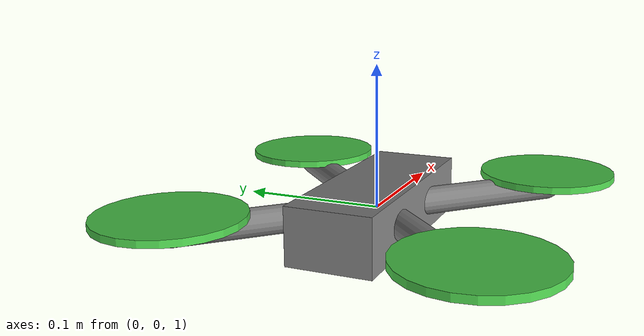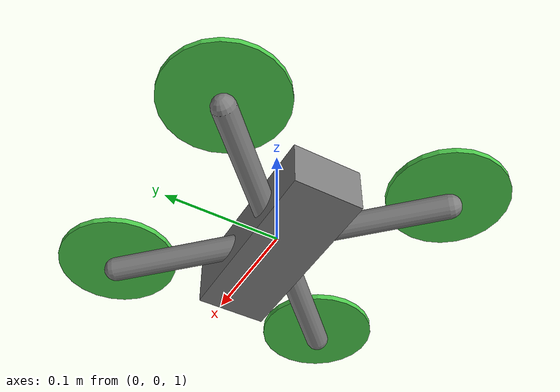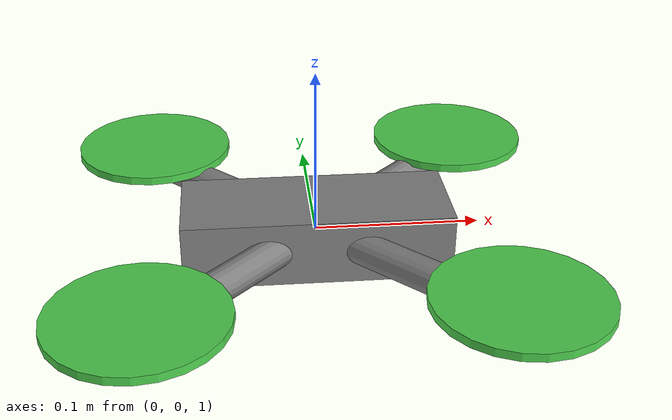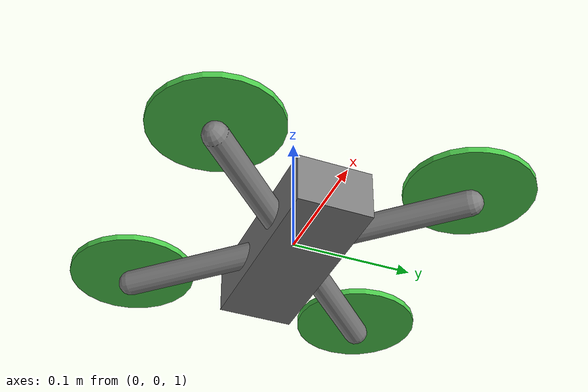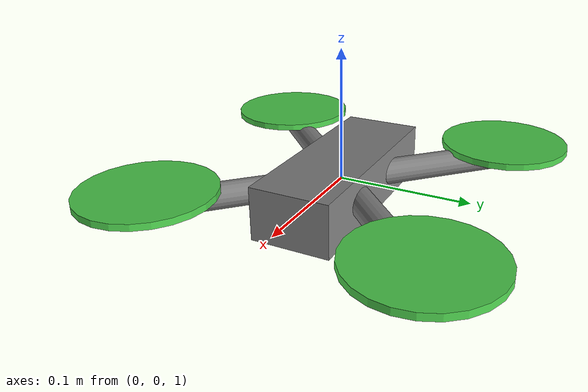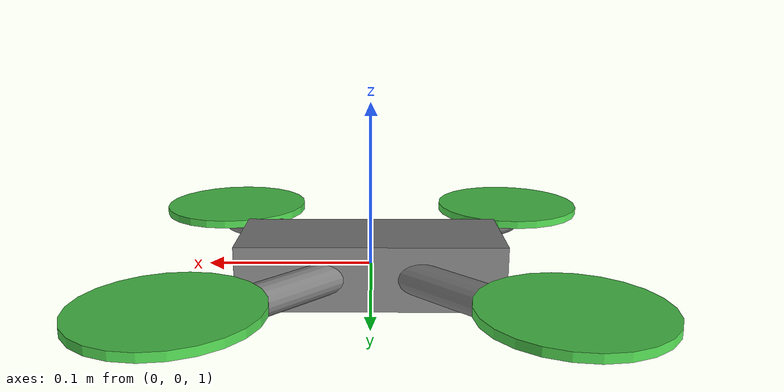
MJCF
<mujoco model="drone2">
	<compiler inertiafromgeom="true" coordinate="local"/>
	<option	timestep="0.002" gravity="0 0 -9.81" />

    <asset>
        <texture builtin="gradient" height="100" rgb1="1 1 1" rgb2="0 0 0" type="skybox" width="100"/>
        <texture builtin="flat" height="1278" mark="cross" markrgb="1 1 1" name="texgeom" random="0.01" rgb1="0.8 0.6 0.4" rgb2="0.8 0.6 0.4" type="cube" width="127"/>
        <texture builtin="checker" height="100" name="texplane" rgb1="0 0 0" rgb2="0.8 0.8 0.8" type="2d" width="100"/>
        <material name="MatPlane" reflectance="0.5" shininess="1" specular="1" texrepeat="60 60" texture="texplane"/>
        <material name="geom" texture="texgeom" texuniform="true"/>
   </asset>

	<worldbody>
		<light cutoff="100" diffuse="1 1 1" dir="-0 0 -1.3" directional="true" exponent="1" pos="0 0 1.3" specular=".1 .1 .1"/>
        <geom conaffinity="1" condim="3" material="MatPlane" name="floor" pos="0 0 0" rgba="0.8 0.9 0.8 1" size="40 40 40" type="plane"/>

        <body name="drone" pos="0 0 1.0">
          <geom pos="0 0 0" name="body" size="0.08 0.03 0.02" type="box" mass = ".68"/>
          <joint name="root" type="free" damping="0" armature="0"/>
          <geom fromto="0 0 0 .10 .10 0" name="link_lf" size="0.01" type="capsule" mass=".01"/>
          <geom fromto="0 0 0 -.10 .10 0" name="link_lb" size="0.01" type="capsule" mass=".01"/>
          <geom fromto="0 0 0 .10 -.10 0" name="link_rf" size="0.01" type="capsule" mass=".01"/>
          <geom fromto="0 0 0 -.10 -.10 0" name="link_rb" size="0.01" type="capsule" mass=".01"/>

          <site name="motor_lf" type="cylinder" pos=".10 .10 0.01"  size="0.05 0.0025"   rgba="0.3 0.8 0.3 1"/>
          <site name="motor_lb" type="cylinder" pos="-.10 .10 0.01"  size="0.05 0.0025"   rgba="0.3 0.8 0.3 1"/>
          <site name="motor_rb" type="cylinder" pos="-.10 -.10 0.01"  size="0.05 0.0025"   rgba="0.3 0.8 0.3 1"/>
          <site name="motor_rf" type="cylinder" pos=".10 -.10 0.01"  size="0.05 0.0025"   rgba="0.3 0.8 0.3 1"/>
        </body>

	</worldbody>

     <actuator>
        <motor ctrllimited="true" ctrlrange="-15.696 15.696" gear="1.0 0.0 0.0 0.0 0.0 0.0" joint="root"/>
        <motor ctrllimited="true" ctrlrange="-15.696 15.696" gear="0.0 1.0 0.0 0.0 0.0 0.0" joint="root"/>
        <motor ctrllimited="true" ctrlrange="-15.696 15.696" gear="0.0 0.0 1.0 0.0 0.0 0.0" joint="root"/>
        <motor ctrllimited="true" ctrlrange="-1.5696 1.5696" gear="0.0 0.0 0.0 1.0 0.0 0.0" joint="root"/>
        <motor ctrllimited="true" ctrlrange="-1.5696 1.5696" gear="0.0 0.0 0.0 0.0 1.0 0.0" joint="root"/>
        <motor ctrllimited="true" ctrlrange="-1.5696 1.5696" gear="0.0 0.0 0.0 0.0 0.0 1.0" joint="root"/>
	</actuator>

</mujoco>
